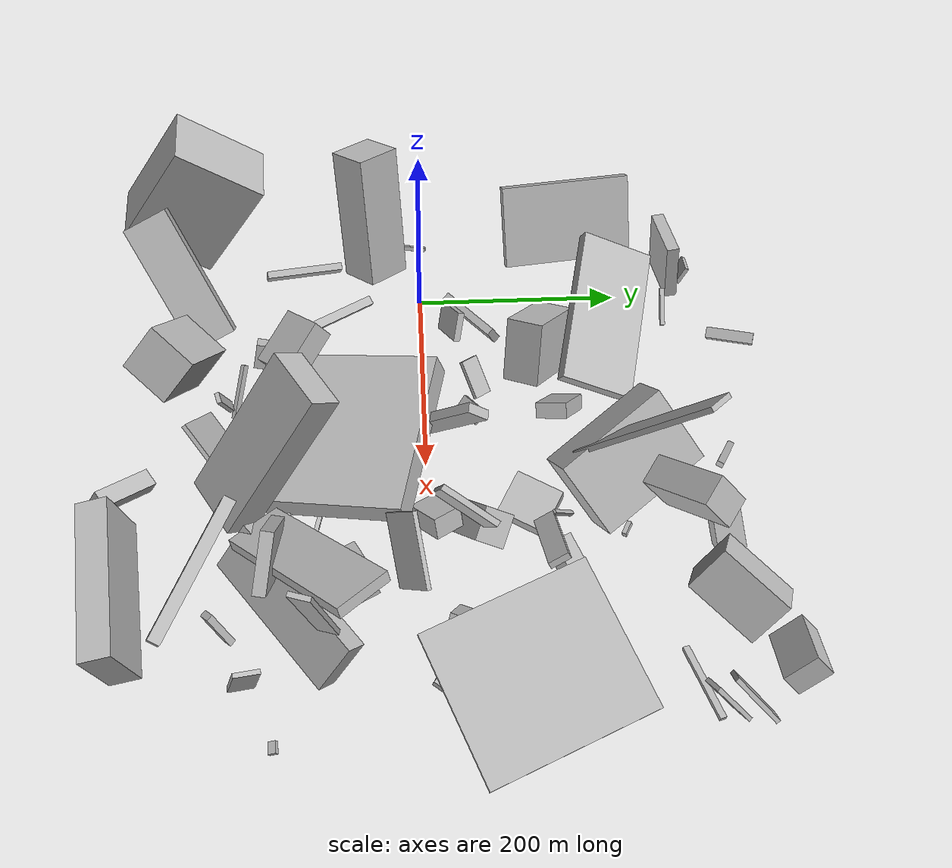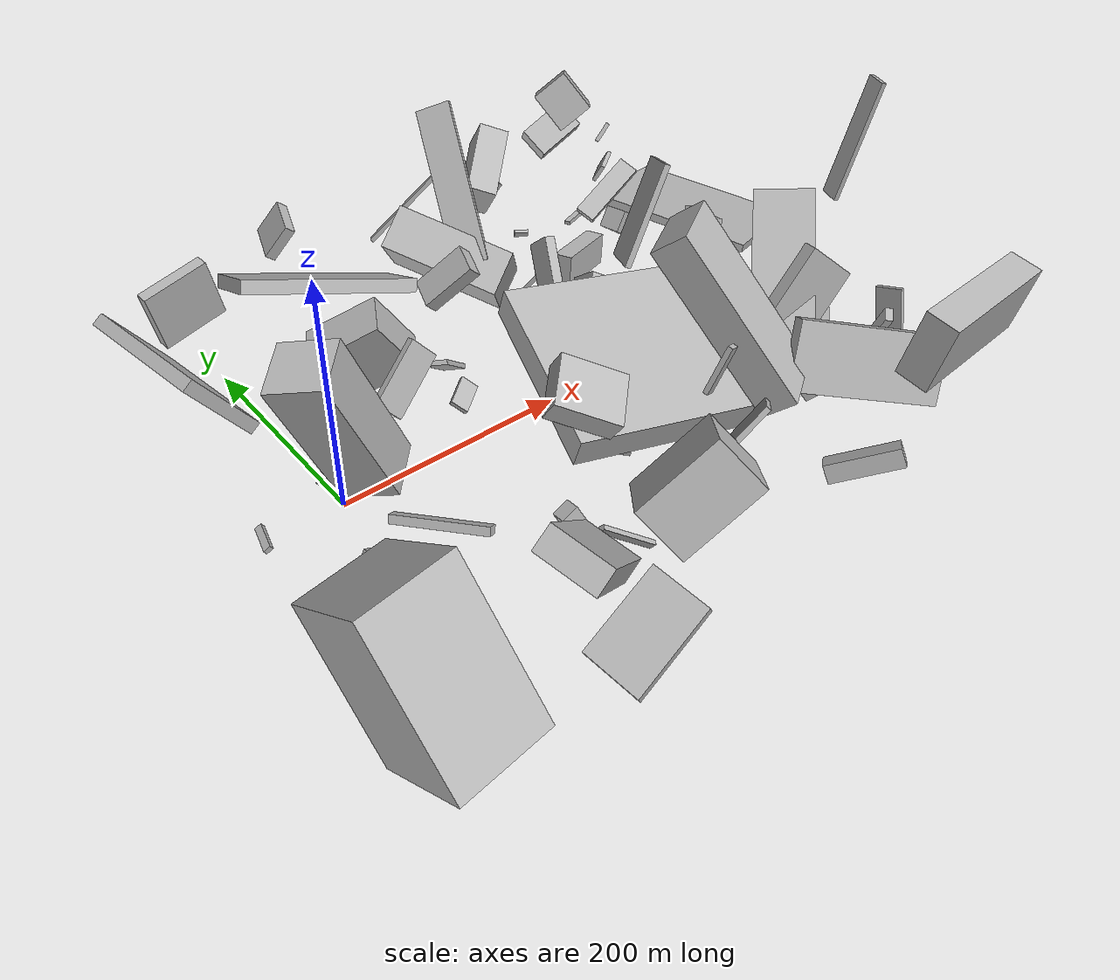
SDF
<sdf version="1.6">
 <world name="default">
  <scene>
   <sky><clouds><speed>12</speed></clouds></sky>
   <ambient>0.4 0.4 0.4 1</ambient>
   <background>0.7 0.7 0.7 1</background>
   <shadows>1</shadows>
  </scene>
  <gravity>0 0 -9.8066</gravity>
  <magnetic_field>6e-06 2.3e-05 -4.2e-05</magnetic_field>
  <physics default="0" name="default_physics" type="ode">
   <ode>
    <solver>
     <type>quick</type>
     <iters>10</iters>
     <sor>1.0</sor>
     <use_dynamic_moi_rescaling>0</use_dynamic_moi_rescaling>
    </solver>
    <constraints>
     <cfm>0</cfm>
     <erp>0.2</erp>
     <contact_max_correcting_vel>100</contact_max_correcting_vel>
     <contact_surface_layer>0.001</contact_surface_layer>
    </constraints>
   </ode>
   <max_step_size>0.004</max_step_size>
   <real_time_factor>1</real_time_factor>
   <real_time_update_rate>250</real_time_update_rate>
  </physics>
  <light name="sun" type="directional">
   <pose>0 0 10 0 0 0</pose>
   <diffuse>0.8 0.8 0.8 1</diffuse>
   <specular>0.2 0.2 0.2 1</specular>
   <attenuation>
    <range>1000</range>
    <constant>0.9</constant>
    <linear>0.01</linear>
    <quadratic>0.001</quadratic>
   </attenuation>
   <direction>-0.5 0.1 -0.9</direction>
  </light>
  <model name="building_1">
   <static>0</static>
   <pose>330.6401846790503 -68.97662135859976 60.86169399213077 1.2213078323936137 -0.08014618248106077 2.032477348147748</pose>
   <link name="link">
    <gravity>0</gravity>
    <pose>0 0 16.5 0 0 0</pose>
    <collision name="collision"><geometry><box><size>21 35 33</size></box></geometry></collision>
    <visual name="visual">
     <cast_shadows>0</cast_shadows>
     <geometry><box><size>21 35 33</size></box></geometry>
     <material>
      <script>
       <uri>model://HANNAS_wall/materials/scripts</uri>
       <uri>model://HANNAS_wall/materials/textures</uri>
       <name>vrc/HANNAS_wall</name>
      </script>
     </material>
    </visual>
   </link>
  </model>
  <model name="building_2">
   <static>0</static>
   <pose>282.8349208608411 -173.9622478714838 76.86206361769914 0.6489603871517472 -0.03766612138654573 -2.5760224262908373</pose>
   <link name="link">
    <gravity>0</gravity>
    <pose>0 0 75.0 0 0 0</pose>
    <collision name="collision"><geometry><box><size>58 30 150</size></box></geometry></collision>
    <visual name="visual">
     <cast_shadows>0</cast_shadows>
     <geometry><box><size>58 30 150</size></box></geometry>
     <material>
      <script>
       <uri>model://HANNAS_wall/materials/scripts</uri>
       <uri>model://HANNAS_wall/materials/textures</uri>
       <name>vrc/HANNAS_wall</name>
      </script>
     </material>
    </visual>
   </link>
  </model>
  <model name="building_3">
   <static>0</static>
   <pose>81.0626001469484 -271.0712881011194 23.976217825815823 -1.4014535631567995 -0.49056688013281174 0.06762576372795787</pose>
   <link name="link">
    <gravity>0</gravity>
    <pose>0 0 23.5 0 0 0</pose>
    <collision name="collision"><geometry><box><size>72 8 47</size></box></geometry></collision>
    <visual name="visual">
     <cast_shadows>0</cast_shadows>
     <geometry><box><size>72 8 47</size></box></geometry>
     <material>
      <script>
       <uri>model://HANNAS_wall/materials/scripts</uri>
       <uri>model://HANNAS_wall/materials/textures</uri>
       <name>vrc/HANNAS_wall</name>
      </script>
     </material>
    </visual>
   </link>
  </model>
  <model name="building_4">
   <static>0</static>
   <pose>29.560428146347355 -84.63472052270268 25.300607254780317 2.9103385916236424 -1.0516083619123007 0.804737126494148</pose>
   <link name="link">
    <gravity>0</gravity>
    <pose>0 0 4.5 0 0 0</pose>
    <collision name="collision"><geometry><box><size>7 78 9</size></box></geometry></collision>
    <visual name="visual">
     <cast_shadows>0</cast_shadows>
     <geometry><box><size>7 78 9</size></box></geometry>
     <material>
      <script>
       <uri>model://HANNAS_wall/materials/scripts</uri>
       <uri>model://HANNAS_wall/materials/textures</uri>
       <name>vrc/HANNAS_wall</name>
      </script>
     </material>
    </visual>
   </link>
  </model>
  <model name="building_5">
   <static>0</static>
   <pose>302.4379409475547 -127.82473782537309 43.45394677170538 0.3973132847140056 -0.038747848900868145 -2.743695891603612</pose>
   <link name="link">
    <gravity>0</gravity>
    <pose>0 0 13.0 0 0 0</pose>
    <collision name="collision"><geometry><box><size>28 10 26</size></box></geometry></collision>
    <visual name="visual">
     <cast_shadows>0</cast_shadows>
     <geometry><box><size>28 10 26</size></box></geometry>
     <material>
      <script>
       <uri>model://HANNAS_wall/materials/scripts</uri>
       <uri>model://HANNAS_wall/materials/textures</uri>
       <name>vrc/HANNAS_wall</name>
      </script>
     </material>
    </visual>
   </link>
  </model>
  <model name="building_6">
   <static>0</static>
   <pose>405.3965325135795 -52.244218121930174 148.83087706208443 -2.0283880300756354 0.11156013460100783 2.288629116676314</pose>
   <link name="link">
    <gravity>0</gravity>
    <pose>0 0 75.0 0 0 0</pose>
    <collision name="collision"><geometry><box><size>50 10 150</size></box></geometry></collision>
    <visual name="visual">
     <cast_shadows>0</cast_shadows>
     <geometry><box><size>50 10 150</size></box></geometry>
     <material>
      <script>
       <uri>model://HANNAS_wall/materials/scripts</uri>
       <uri>model://HANNAS_wall/materials/textures</uri>
       <name>vrc/HANNAS_wall</name>
      </script>
     </material>
    </visual>
   </link>
  </model>
  <model name="building_7">
   <static>0</static>
   <pose>142.14690146915493 -54.69214779469271 87.1153470832174 1.681701467119326 -0.2719319697998864 1.3007881666704522</pose>
   <link name="link">
    <gravity>0</gravity>
    <pose>0 0 75.0 0 0 0</pose>
    <collision name="collision"><geometry><box><size>150 25 150</size></box></geometry></collision>
    <visual name="visual">
     <cast_shadows>0</cast_shadows>
     <geometry><box><size>150 25 150</size></box></geometry>
     <material>
      <script>
       <uri>model://HANNAS_wall/materials/scripts</uri>
       <uri>model://HANNAS_wall/materials/textures</uri>
       <name>vrc/HANNAS_wall</name>
      </script>
     </material>
    </visual>
   </link>
  </model>
  <model name="building_8">
   <static>0</static>
   <pose>-58.447030958329634 150.95219106172127 56.99921763043278 0.0391547972551499 -0.9728520772338762 -3.039114634813768</pose>
   <link name="link">
    <gravity>0</gravity>
    <pose>0 0 5.5 0 0 0</pose>
    <collision name="collision"><geometry><box><size>81 130 11</size></box></geometry></collision>
    <visual name="visual">
     <cast_shadows>0</cast_shadows>
     <geometry><box><size>81 130 11</size></box></geometry>
     <material>
      <script>
       <uri>model://HANNAS_wall/materials/scripts</uri>
       <uri>model://HANNAS_wall/materials/textures</uri>
       <name>vrc/HANNAS_wall</name>
      </script>
     </material>
    </visual>
   </link>
  </model>
  <model name="building_9">
   <static>0</static>
   <pose>408.3747287221505 150.64762045314941 74.44168577936496 -1.9520521013392222 1.3195483976905957 -3.121755598922052</pose>
   <link name="link">
    <gravity>0</gravity>
    <pose>0 0 75.0 0 0 0</pose>
    <collision name="collision"><geometry><box><size>7 132 150</size></box></geometry></collision>
    <visual name="visual">
     <cast_shadows>0</cast_shadows>
     <geometry><box><size>7 132 150</size></box></geometry>
     <material>
      <script>
       <uri>model://HANNAS_wall/materials/scripts</uri>
       <uri>model://HANNAS_wall/materials/textures</uri>
       <name>vrc/HANNAS_wall</name>
      </script>
     </material>
    </visual>
   </link>
  </model>
  <model name="building_10">
   <static>0</static>
   <pose>248.37747568204836 179.24750787675453 118.25532349445177 -2.1351522336531668 -0.8179957873193487 1.2557586887312602</pose>
   <link name="link">
    <gravity>0</gravity>
    <pose>0 0 16.5 0 0 0</pose>
    <collision name="collision"><geometry><box><size>150 5 33</size></box></geometry></collision>
    <visual name="visual">
     <cast_shadows>0</cast_shadows>
     <geometry><box><size>150 5 33</size></box></geometry>
     <material>
      <script>
       <uri>model://HANNAS_wall/materials/scripts</uri>
       <uri>model://HANNAS_wall/materials/textures</uri>
       <name>vrc/HANNAS_wall</name>
      </script>
     </material>
    </visual>
   </link>
  </model>
  <model name="building_11">
   <static>0</static>
   <pose>432.55162261226144 -78.43100745442042 147.87691315640765 0.23847763649679896 -0.050048538803914654 1.2616032643227915</pose>
   <link name="link">
    <gravity>0</gravity>
    <pose>0 0 51.5 0 0 0</pose>
    <collision name="collision"><geometry><box><size>17 4 103</size></box></geometry></collision>
    <visual name="visual">
     <cast_shadows>0</cast_shadows>
     <geometry><box><size>17 4 103</size></box></geometry>
     <material>
      <script>
       <uri>model://HANNAS_wall/materials/scripts</uri>
       <uri>model://HANNAS_wall/materials/textures</uri>
       <name>vrc/HANNAS_wall</name>
      </script>
     </material>
    </visual>
   </link>
  </model>
  <model name="building_12">
   <static>0</static>
   <pose>230.1529030639271 -46.025586081519954 37.93980263396286 -1.994287407223854 -0.48952664781386784 2.3710649823992407</pose>
   <link name="link">
    <gravity>0</gravity>
    <pose>0 0 10.5 0 0 0</pose>
    <collision name="collision"><geometry><box><size>64 43 21</size></box></geometry></collision>
    <visual name="visual">
     <cast_shadows>0</cast_shadows>
     <geometry><box><size>64 43 21</size></box></geometry>
     <material>
      <script>
       <uri>model://HANNAS_wall/materials/scripts</uri>
       <uri>model://HANNAS_wall/materials/textures</uri>
       <name>vrc/HANNAS_wall</name>
      </script>
     </material>
    </visual>
   </link>
  </model>
  <model name="building_13">
   <static>0</static>
   <pose>385.90744219837086 -235.2257946685935 135.9314429349879 1.7801257256984708 0.07278540565181203 0.12382590066298964</pose>
   <link name="link">
    <gravity>0</gravity>
    <pose>0 0 13.0 0 0 0</pose>
    <collision name="collision"><geometry><box><size>129 56 26</size></box></geometry></collision>
    <visual name="visual">
     <cast_shadows>0</cast_shadows>
     <geometry><box><size>129 56 26</size></box></geometry>
     <material>
      <script>
       <uri>model://HANNAS_wall/materials/scripts</uri>
       <uri>model://HANNAS_wall/materials/textures</uri>
       <name>vrc/HANNAS_wall</name>
      </script>
     </material>
    </visual>
   </link>
  </model>
  <model name="building_14">
   <static>0</static>
   <pose>422.5401363094571 -74.7524374659871 54.62739657536272 1.4342582731600704 -0.6716954978374917 -0.8080129248827955</pose>
   <link name="link">
    <gravity>0</gravity>
    <pose>0 0 69.5 0 0 0</pose>
    <collision name="collision"><geometry><box><size>20 49 139</size></box></geometry></collision>
    <visual name="visual">
     <cast_shadows>0</cast_shadows>
     <geometry><box><size>20 49 139</size></box></geometry>
     <material>
      <script>
       <uri>model://HANNAS_wall/materials/scripts</uri>
       <uri>model://HANNAS_wall/materials/textures</uri>
       <name>vrc/HANNAS_wall</name>
      </script>
     </material>
    </visual>
   </link>
  </model>
  <model name="building_15">
   <static>0</static>
   <pose>-64.17913310305121 7.82193050831936 10.702641038148808 1.6302253794734933 -0.571618268024346 -0.2465404213282991</pose>
   <link name="link">
    <gravity>0</gravity>
    <pose>0 0 12.0 0 0 0</pose>
    <collision name="collision"><geometry><box><size>6 4 24</size></box></geometry></collision>
    <visual name="visual">
     <cast_shadows>0</cast_shadows>
     <geometry><box><size>6 4 24</size></box></geometry>
     <material>
      <script>
       <uri>model://HANNAS_wall/materials/scripts</uri>
       <uri>model://HANNAS_wall/materials/textures</uri>
       <name>vrc/HANNAS_wall</name>
      </script>
     </material>
    </visual>
   </link>
  </model>
  <model name="building_16">
   <static>0</static>
   <pose>195.66601463884356 224.0556857100533 59.76741704508189 -1.9683219695219103 0.7404936658520385 -2.8255362053889006</pose>
   <link name="link">
    <gravity>0</gravity>
    <pose>0 0 55.5 0 0 0</pose>
    <collision name="collision"><geometry><box><size>41 78 111</size></box></geometry></collision>
    <visual name="visual">
     <cast_shadows>0</cast_shadows>
     <geometry><box><size>41 78 111</size></box></geometry>
     <material>
      <script>
       <uri>model://HANNAS_wall/materials/scripts</uri>
       <uri>model://HANNAS_wall/materials/textures</uri>
       <name>vrc/HANNAS_wall</name>
      </script>
     </material>
    </visual>
   </link>
  </model>
  <model name="building_17">
   <static>0</static>
   <pose>317.54271466841294 29.304713802363434 127.3253977196939 1.9770986526470509 0.3261689904944823 1.0414655041118221</pose>
   <link name="link">
    <gravity>0</gravity>
    <pose>0 0 2.5 0 0 0</pose>
    <collision name="collision"><geometry><box><size>52 91 5</size></box></geometry></collision>
    <visual name="visual">
     <cast_shadows>0</cast_shadows>
     <geometry><box><size>52 91 5</size></box></geometry>
     <material>
      <script>
       <uri>model://HANNAS_wall/materials/scripts</uri>
       <uri>model://HANNAS_wall/materials/textures</uri>
       <name>vrc/HANNAS_wall</name>
      </script>
     </material>
    </visual>
   </link>
  </model>
  <model name="building_18">
   <static>0</static>
   <pose>408.12778263817796 125.4393955690349 36.84739537569955 -0.06135292898960341 -0.9316473570658355 0.22601309537820197</pose>
   <link name="link">
    <gravity>0</gravity>
    <pose>0 0 22.5 0 0 0</pose>
    <collision name="collision"><geometry><box><size>27 21 45</size></box></geometry></collision>
    <visual name="visual">
     <cast_shadows>0</cast_shadows>
     <geometry><box><size>27 21 45</size></box></geometry>
     <material>
      <script>
       <uri>model://HANNAS_wall/materials/scripts</uri>
       <uri>model://HANNAS_wall/materials/textures</uri>
       <name>vrc/HANNAS_wall</name>
      </script>
     </material>
    </visual>
   </link>
  </model>
  <model name="building_19">
   <static>0</static>
   <pose>191.91129526506566 -184.11686997868208 56.770534162860486 0.610299561794468 -0.5529922216051526 1.9343248101592736</pose>
   <link name="link">
    <gravity>0</gravity>
    <pose>0 0 31.5 0 0 0</pose>
    <collision name="collision"><geometry><box><size>4 40 63</size></box></geometry></collision>
    <visual name="visual">
     <cast_shadows>0</cast_shadows>
     <geometry><box><size>4 40 63</size></box></geometry>
     <material>
      <script>
       <uri>model://HANNAS_wall/materials/scripts</uri>
       <uri>model://HANNAS_wall/materials/textures</uri>
       <name>vrc/HANNAS_wall</name>
      </script>
     </material>
    </visual>
   </link>
  </model>
  <model name="building_20">
   <static>0</static>
   <pose>54.4808876550011 -246.4951044286119 92.04953470090996 1.1338250265250234 -0.7492473303475533 -2.4924719493710334</pose>
   <link name="link">
    <gravity>0</gravity>
    <pose>0 0 22.0 0 0 0</pose>
    <collision name="collision"><geometry><box><size>129 19 44</size></box></geometry></collision>
    <visual name="visual">
     <cast_shadows>0</cast_shadows>
     <geometry><box><size>129 19 44</size></box></geometry>
     <material>
      <script>
       <uri>model://HANNAS_wall/materials/scripts</uri>
       <uri>model://HANNAS_wall/materials/textures</uri>
       <name>vrc/HANNAS_wall</name>
      </script>
     </material>
    </visual>
   </link>
  </model>
  <model name="building_21">
   <static>0</static>
   <pose>71.84997680711791 114.12865618244635 65.59036325085525 -2.873081439384422 -0.506220165360618 -0.6332247593190015</pose>
   <link name="link">
    <gravity>0</gravity>
    <pose>0 0 30.5 0 0 0</pose>
    <collision name="collision"><geometry><box><size>68 36 61</size></box></geometry></collision>
    <visual name="visual">
     <cast_shadows>0</cast_shadows>
     <geometry><box><size>68 36 61</size></box></geometry>
     <material>
      <script>
       <uri>model://HANNAS_wall/materials/scripts</uri>
       <uri>model://HANNAS_wall/materials/textures</uri>
       <name>vrc/HANNAS_wall</name>
      </script>
     </material>
    </visual>
   </link>
  </model>
  <model name="building_22">
   <static>0</static>
   <pose>369.82768472162405 -134.07848322744357 96.02374563828421 0.8529754271611159 -0.08573644927111766 -1.7245740961982303</pose>
   <link name="link">
    <gravity>0</gravity>
    <pose>0 0 26.0 0 0 0</pose>
    <collision name="collision"><geometry><box><size>11 60 52</size></box></geometry></collision>
    <visual name="visual">
     <cast_shadows>0</cast_shadows>
     <geometry><box><size>11 60 52</size></box></geometry>
     <material>
      <script>
       <uri>model://HANNAS_wall/materials/scripts</uri>
       <uri>model://HANNAS_wall/materials/textures</uri>
       <name>vrc/HANNAS_wall</name>
      </script>
     </material>
    </visual>
   </link>
  </model>
  <model name="building_23">
   <static>0</static>
   <pose>-40.40206204368819 -222.04598824237792 95.1763555979381 -1.7337382331133473 -0.9446447212355279 1.771595107047687</pose>
   <link name="link">
    <gravity>0</gravity>
    <pose>0 0 33.0 0 0 0</pose>
    <collision name="collision"><geometry><box><size>113 95 66</size></box></geometry></collision>
    <visual name="visual">
     <cast_shadows>0</cast_shadows>
     <geometry><box><size>113 95 66</size></box></geometry>
     <material>
      <script>
       <uri>model://HANNAS_wall/materials/scripts</uri>
       <uri>model://HANNAS_wall/materials/textures</uri>
       <name>vrc/HANNAS_wall</name>
      </script>
     </material>
    </visual>
   </link>
  </model>
  <model name="building_24">
   <static>0</static>
   <pose>84.0707131717567 172.2127010111655 70.55393134689798 0.4302186510949541 -0.26735108125472234 2.9202620926677176</pose>
   <link name="link">
    <gravity>0</gravity>
    <pose>0 0 6.0 0 0 0</pose>
    <collision name="collision"><geometry><box><size>150 72 12</size></box></geometry></collision>
    <visual name="visual">
     <cast_shadows>0</cast_shadows>
     <geometry><box><size>150 72 12</size></box></geometry>
     <material>
      <script>
       <uri>model://HANNAS_wall/materials/scripts</uri>
       <uri>model://HANNAS_wall/materials/textures</uri>
       <name>vrc/HANNAS_wall</name>
      </script>
     </material>
    </visual>
   </link>
  </model>
  <model name="building_25">
   <static>0</static>
   <pose>186.16093342330208 134.68092199862897 71.62440826883 1.9771797382475995 -0.7098621267334079 -0.54935483868228</pose>
   <link name="link">
    <gravity>0</gravity>
    <pose>0 0 14.0 0 0 0</pose>
    <collision name="collision"><geometry><box><size>52 14 28</size></box></geometry></collision>
    <visual name="visual">
     <cast_shadows>0</cast_shadows>
     <geometry><box><size>52 14 28</size></box></geometry>
     <material>
      <script>
       <uri>model://HANNAS_wall/materials/scripts</uri>
       <uri>model://HANNAS_wall/materials/textures</uri>
       <name>vrc/HANNAS_wall</name>
      </script>
     </material>
    </visual>
   </link>
  </model>
  <model name="building_26">
   <static>0</static>
   <pose>266.00604943015634 45.99138959268534 39.06310281333756 2.225217003737932 0.645051071324224 1.5874641011809876</pose>
   <link name="link">
    <gravity>0</gravity>
    <pose>0 0 15.5 0 0 0</pose>
    <collision name="collision"><geometry><box><size>31 66 31</size></box></geometry></collision>
    <visual name="visual">
     <cast_shadows>0</cast_shadows>
     <geometry><box><size>31 66 31</size></box></geometry>
     <material>
      <script>
       <uri>model://HANNAS_wall/materials/scripts</uri>
       <uri>model://HANNAS_wall/materials/textures</uri>
       <name>vrc/HANNAS_wall</name>
      </script>
     </material>
    </visual>
   </link>
  </model>
  <model name="building_27">
   <static>0</static>
   <pose>314.4219082428761 94.9811867781119 94.87484212050306 -1.0285176209080606 0.4165863677232989 -1.2483580132397394</pose>
   <link name="link">
    <gravity>0</gravity>
    <pose>0 0 31.5 0 0 0</pose>
    <collision name="collision"><geometry><box><size>18 6 63</size></box></geometry></collision>
    <visual name="visual">
     <cast_shadows>0</cast_shadows>
     <geometry><box><size>18 6 63</size></box></geometry>
     <material>
      <script>
       <uri>model://HANNAS_wall/materials/scripts</uri>
       <uri>model://HANNAS_wall/materials/textures</uri>
       <name>vrc/HANNAS_wall</name>
      </script>
     </material>
    </visual>
   </link>
  </model>
  <model name="building_28">
   <static>0</static>
   <pose>402.3069825286139 -225.41045590690118 67.11528669203027 1.2876486599841648 -0.3844610396833008 -1.9498265097950316</pose>
   <link name="link">
    <gravity>0</gravity>
    <pose>0 0 64.0 0 0 0</pose>
    <collision name="collision"><geometry><box><size>11 55 128</size></box></geometry></collision>
    <visual name="visual">
     <cast_shadows>0</cast_shadows>
     <geometry><box><size>11 55 128</size></box></geometry>
     <material>
      <script>
       <uri>model://HANNAS_wall/materials/scripts</uri>
       <uri>model://HANNAS_wall/materials/textures</uri>
       <name>vrc/HANNAS_wall</name>
      </script>
     </material>
    </visual>
   </link>
  </model>
  <model name="building_29">
   <static>0</static>
   <pose>338.2988408866647 -29.685444533514733 91.9236764801575 0.39388170075488926 -0.5981484504317415 -2.954040614647258</pose>
   <link name="link">
    <gravity>0</gravity>
    <pose>0 0 23.0 0 0 0</pose>
    <collision name="collision"><geometry><box><size>63 4 46</size></box></geometry></collision>
    <visual name="visual">
     <cast_shadows>0</cast_shadows>
     <geometry><box><size>63 4 46</size></box></geometry>
     <material>
      <script>
       <uri>model://HANNAS_wall/materials/scripts</uri>
       <uri>model://HANNAS_wall/materials/textures</uri>
       <name>vrc/HANNAS_wall</name>
      </script>
     </material>
    </visual>
   </link>
  </model>
  <model name="building_30">
   <static>0</static>
   <pose>202.23578584345285 3.960033393901581 65.07176276607125 0.39581752820591243 -0.7699643613428208 1.1379736984984061</pose>
   <link name="link">
    <gravity>0</gravity>
    <pose>0 0 11.5 0 0 0</pose>
    <collision name="collision"><geometry><box><size>150 9 23</size></box></geometry></collision>
    <visual name="visual">
     <cast_shadows>0</cast_shadows>
     <geometry><box><size>150 9 23</size></box></geometry>
     <material>
      <script>
       <uri>model://HANNAS_wall/materials/scripts</uri>
       <uri>model://HANNAS_wall/materials/textures</uri>
       <name>vrc/HANNAS_wall</name>
      </script>
     </material>
    </visual>
   </link>
  </model>
  <model name="building_31">
   <static>0</static>
   <pose>425.9595746792376 228.02483306662106 7.8056103222981825 1.0448420111684489 1.4814197226038581 -0.23457938093319292</pose>
   <link name="link">
    <gravity>0</gravity>
    <pose>0 0 3.0 0 0 0</pose>
    <collision name="collision"><geometry><box><size>4 69 6</size></box></geometry></collision>
    <visual name="visual">
     <cast_shadows>0</cast_shadows>
     <geometry><box><size>4 69 6</size></box></geometry>
     <material>
      <script>
       <uri>model://HANNAS_wall/materials/scripts</uri>
       <uri>model://HANNAS_wall/materials/textures</uri>
       <name>vrc/HANNAS_wall</name>
      </script>
     </material>
    </visual>
   </link>
  </model>
  <model name="building_32">
   <static>0</static>
   <pose>436.6944022931386 -154.66166951240203 53.60319907789065 -0.23209702559404732 0.12954461652526936 0.2128783217658341</pose>
   <link name="link">
    <gravity>0</gravity>
    <pose>0 0 18.0 0 0 0</pose>
    <collision name="collision"><geometry><box><size>4 22 36</size></box></geometry></collision>
    <visual name="visual">
     <cast_shadows>0</cast_shadows>
     <geometry><box><size>4 22 36</size></box></geometry>
     <material>
      <script>
       <uri>model://HANNAS_wall/materials/scripts</uri>
       <uri>model://HANNAS_wall/materials/textures</uri>
       <name>vrc/HANNAS_wall</name>
      </script>
     </material>
    </visual>
   </link>
  </model>
  <model name="building_33">
   <static>0</static>
   <pose>439.3694277983781 97.17247175421133 21.29281448507916 1.693454072367705 1.3854446574377697 0.7324534815993076</pose>
   <link name="link">
    <gravity>0</gravity>
    <pose>0 0 2.0 0 0 0</pose>
    <collision name="collision"><geometry><box><size>16 35 4</size></box></geometry></collision>
    <visual name="visual">
     <cast_shadows>0</cast_shadows>
     <geometry><box><size>16 35 4</size></box></geometry>
     <material>
      <script>
       <uri>model://HANNAS_wall/materials/scripts</uri>
       <uri>model://HANNAS_wall/materials/textures</uri>
       <name>vrc/HANNAS_wall</name>
      </script>
     </material>
    </visual>
   </link>
  </model>
  <model name="building_34">
   <static>0</static>
   <pose>-35.63419724915097 243.914549280806 50.721494831918356 -1.3709451403892277 0.056020257392208166 -1.4665376477394885</pose>
   <link name="link">
    <gravity>0</gravity>
    <pose>0 0 30.0 0 0 0</pose>
    <collision name="collision"><geometry><box><size>12 57 60</size></box></geometry></collision>
    <visual name="visual">
     <cast_shadows>0</cast_shadows>
     <geometry><box><size>12 57 60</size></box></geometry>
     <material>
      <script>
       <uri>model://HANNAS_wall/materials/scripts</uri>
       <uri>model://HANNAS_wall/materials/textures</uri>
       <name>vrc/HANNAS_wall</name>
      </script>
     </material>
    </visual>
   </link>
  </model>
  <model name="building_35">
   <static>0</static>
   <pose>153.5420043060953 -205.9175681157795 89.82806213531967 1.068345917626618 0.7476490950140872 -1.0397911690815789</pose>
   <link name="link">
    <gravity>0</gravity>
    <pose>0 0 24.5 0 0 0</pose>
    <collision name="collision"><geometry><box><size>46 71 49</size></box></geometry></collision>
    <visual name="visual">
     <cast_shadows>0</cast_shadows>
     <geometry><box><size>46 71 49</size></box></geometry>
     <material>
      <script>
       <uri>model://HANNAS_wall/materials/scripts</uri>
       <uri>model://HANNAS_wall/materials/textures</uri>
       <name>vrc/HANNAS_wall</name>
      </script>
     </material>
    </visual>
   </link>
  </model>
  <model name="building_36">
   <static>0</static>
   <pose>-1.4391422154944102 -62.6795343260395 123.0902629292608 2.1644140496758713 -1.190778318726387 -2.9969778093517037</pose>
   <link name="link">
    <gravity>0</gravity>
    <pose>0 0 22.0 0 0 0</pose>
    <collision name="collision"><geometry><box><size>126 40 44</size></box></geometry></collision>
    <visual name="visual">
     <cast_shadows>0</cast_shadows>
     <geometry><box><size>126 40 44</size></box></geometry>
     <material>
      <script>
       <uri>model://HANNAS_wall/materials/scripts</uri>
       <uri>model://HANNAS_wall/materials/textures</uri>
       <name>vrc/HANNAS_wall</name>
      </script>
     </material>
    </visual>
   </link>
  </model>
  <model name="building_37">
   <static>0</static>
   <pose>400.8201152611603 -172.71655469020607 83.04782648030402 -1.3281397401286115 1.0301349979397791 1.0326517480321424</pose>
   <link name="link">
    <gravity>0</gravity>
    <pose>0 0 3.0 0 0 0</pose>
    <collision name="collision"><geometry><box><size>34 11 6</size></box></geometry></collision>
    <visual name="visual">
     <cast_shadows>0</cast_shadows>
     <geometry><box><size>34 11 6</size></box></geometry>
     <material>
      <script>
       <uri>model://HANNAS_wall/materials/scripts</uri>
       <uri>model://HANNAS_wall/materials/textures</uri>
       <name>vrc/HANNAS_wall</name>
      </script>
     </material>
    </visual>
   </link>
  </model>
  <model name="building_38">
   <static>0</static>
   <pose>476.78827076233034 -129.06936855270618 41.252977595518956 -1.6743034519944677 0.43478911449823365 -1.560445418849254</pose>
   <link name="link">
    <gravity>0</gravity>
    <pose>0 0 5.0 0 0 0</pose>
    <collision name="collision"><geometry><box><size>7 4 10</size></box></geometry></collision>
    <visual name="visual">
     <cast_shadows>0</cast_shadows>
     <geometry><box><size>7 4 10</size></box></geometry>
     <material>
      <script>
       <uri>model://HANNAS_wall/materials/scripts</uri>
       <uri>model://HANNAS_wall/materials/textures</uri>
       <name>vrc/HANNAS_wall</name>
      </script>
     </material>
    </visual>
   </link>
  </model>
  <model name="building_39">
   <static>0</static>
   <pose>141.25701346220922 55.75100671264153 29.891299473068344 -0.37368810309665246 -0.814821838889803 0.9667544935278126</pose>
   <link name="link">
    <gravity>0</gravity>
    <pose>0 0 18.5 0 0 0</pose>
    <collision name="collision"><geometry><box><size>4 19 37</size></box></geometry></collision>
    <visual name="visual">
     <cast_shadows>0</cast_shadows>
     <geometry><box><size>4 19 37</size></box></geometry>
     <material>
      <script>
       <uri>model://HANNAS_wall/materials/scripts</uri>
       <uri>model://HANNAS_wall/materials/textures</uri>
       <name>vrc/HANNAS_wall</name>
      </script>
     </material>
    </visual>
   </link>
  </model>
  <model name="building_40">
   <static>0</static>
   <pose>389.2687861211168 240.0075418019507 123.29631603286592 0.5085015060166457 -0.8252580552223994 2.0560766728980386</pose>
   <link name="link">
    <gravity>0</gravity>
    <pose>0 0 18.0 0 0 0</pose>
    <collision name="collision"><geometry><box><size>41 64 36</size></box></geometry></collision>
    <visual name="visual">
     <cast_shadows>0</cast_shadows>
     <geometry><box><size>41 64 36</size></box></geometry>
     <material>
      <script>
       <uri>model://HANNAS_wall/materials/scripts</uri>
       <uri>model://HANNAS_wall/materials/textures</uri>
       <name>vrc/HANNAS_wall</name>
      </script>
     </material>
    </visual>
   </link>
  </model>
  <model name="building_41">
   <static>0</static>
   <pose>-18.150181304143327 -117.15971328570473 26.943862195541872 1.0237810638447757 -0.07612565695240398 -1.3692458403009133</pose>
   <link name="link">
    <gravity>0</gravity>
    <pose>0 0 3.5 0 0 0</pose>
    <collision name="collision"><geometry><box><size>76 17 7</size></box></geometry></collision>
    <visual name="visual">
     <cast_shadows>0</cast_shadows>
     <geometry><box><size>76 17 7</size></box></geometry>
     <material>
      <script>
       <uri>model://HANNAS_wall/materials/scripts</uri>
       <uri>model://HANNAS_wall/materials/textures</uri>
       <name>vrc/HANNAS_wall</name>
      </script>
     </material>
    </visual>
   </link>
  </model>
  <model name="building_42">
   <static>0</static>
   <pose>185.57779188310644 -113.41889072048748 34.839245541231776 -0.8291659064149229 1.4310785256851422 1.5272256168508418</pose>
   <link name="link">
    <gravity>0</gravity>
    <pose>0 0 9.0 0 0 0</pose>
    <collision name="collision"><geometry><box><size>4 20 18</size></box></geometry></collision>
    <visual name="visual">
     <cast_shadows>0</cast_shadows>
     <geometry><box><size>4 20 18</size></box></geometry>
     <material>
      <script>
       <uri>model://HANNAS_wall/materials/scripts</uri>
       <uri>model://HANNAS_wall/materials/textures</uri>
       <name>vrc/HANNAS_wall</name>
      </script>
     </material>
    </visual>
   </link>
  </model>
  <model name="building_43">
   <static>0</static>
   <pose>124.38572556188971 -174.4612761490056 22.656362832057077 0.6985215463719593 -0.3260314758784843 1.0368670832969553</pose>
   <link name="link">
    <gravity>0</gravity>
    <pose>0 0 3.0 0 0 0</pose>
    <collision name="collision"><geometry><box><size>4 52 6</size></box></geometry></collision>
    <visual name="visual">
     <cast_shadows>0</cast_shadows>
     <geometry><box><size>4 52 6</size></box></geometry>
     <material>
      <script>
       <uri>model://HANNAS_wall/materials/scripts</uri>
       <uri>model://HANNAS_wall/materials/textures</uri>
       <name>vrc/HANNAS_wall</name>
      </script>
     </material>
    </visual>
   </link>
  </model>
  <model name="building_44">
   <static>0</static>
   <pose>291.8577748443008 209.04274001079992 113.76690836291931 2.5586925614608056 -0.3456477919656768 2.5103642614404893</pose>
   <link name="link">
    <gravity>0</gravity>
    <pose>0 0 20.5 0 0 0</pose>
    <collision name="collision"><geometry><box><size>28 70 41</size></box></geometry></collision>
    <visual name="visual">
     <cast_shadows>0</cast_shadows>
     <geometry><box><size>28 70 41</size></box></geometry>
     <material>
      <script>
       <uri>model://HANNAS_wall/materials/scripts</uri>
       <uri>model://HANNAS_wall/materials/textures</uri>
       <name>vrc/HANNAS_wall</name>
      </script>
     </material>
    </visual>
   </link>
  </model>
  <model name="building_45">
   <static>0</static>
   <pose>248.22713831338442 -90.61022922540846 34.43811956062135 0.16875337025597814 0.05428881938601915 1.328147867002366</pose>
   <link name="link">
    <gravity>0</gravity>
    <pose>0 0 2.0 0 0 0</pose>
    <collision name="collision"><geometry><box><size>4 150 4</size></box></geometry></collision>
    <visual name="visual">
     <cast_shadows>0</cast_shadows>
     <geometry><box><size>4 150 4</size></box></geometry>
     <material>
      <script>
       <uri>model://HANNAS_wall/materials/scripts</uri>
       <uri>model://HANNAS_wall/materials/textures</uri>
       <name>vrc/HANNAS_wall</name>
      </script>
     </material>
    </visual>
   </link>
  </model>
  <model name="building_46">
   <static>0</static>
   <pose>247.29537883681536 -243.87564593489247 64.69816126895341 -1.1539063752787304 -0.3006495043015286 -2.5050056981922113</pose>
   <link name="link">
    <gravity>0</gravity>
    <pose>0 0 27.0 0 0 0</pose>
    <collision name="collision"><geometry><box><size>16 14 54</size></box></geometry></collision>
    <visual name="visual">
     <cast_shadows>0</cast_shadows>
     <geometry><box><size>16 14 54</size></box></geometry>
     <material>
      <script>
       <uri>model://HANNAS_wall/materials/scripts</uri>
       <uri>model://HANNAS_wall/materials/textures</uri>
       <name>vrc/HANNAS_wall</name>
      </script>
     </material>
    </visual>
   </link>
  </model>
  <model name="building_47">
   <static>0</static>
   <pose>100.1024743145976 271.048451167242 63.79010772256883 1.3834952661544457 0.902462351897849 2.676776148173654</pose>
   <link name="link">
    <gravity>0</gravity>
    <pose>0 0 21.5 0 0 0</pose>
    <collision name="collision"><geometry><box><size>35 10 43</size></box></geometry></collision>
    <visual name="visual">
     <cast_shadows>0</cast_shadows>
     <geometry><box><size>35 10 43</size></box></geometry>
     <material>
      <script>
       <uri>model://HANNAS_wall/materials/scripts</uri>
       <uri>model://HANNAS_wall/materials/textures</uri>
       <name>vrc/HANNAS_wall</name>
      </script>
     </material>
    </visual>
   </link>
  </model>
  <model name="building_48">
   <static>0</static>
   <pose>29.819717703910513 47.905019871530115 16.75979148399957 3.0615382962384454 -0.44943769829383595 2.2799489138244997</pose>
   <link name="link">
    <gravity>0</gravity>
    <pose>0 0 10.5 0 0 0</pose>
    <collision name="collision"><geometry><box><size>8 68 21</size></box></geometry></collision>
    <visual name="visual">
     <cast_shadows>0</cast_shadows>
     <geometry><box><size>8 68 21</size></box></geometry>
     <material>
      <script>
       <uri>model://HANNAS_wall/materials/scripts</uri>
       <uri>model://HANNAS_wall/materials/textures</uri>
       <name>vrc/HANNAS_wall</name>
      </script>
     </material>
    </visual>
   </link>
  </model>
  <model name="building_49">
   <static>0</static>
   <pose>235.16714587790668 104.1268889566399 17.49509376423194 -2.9409524159096354 1.340555165135518 2.8129487807313915</pose>
   <link name="link">
    <gravity>0</gravity>
    <pose>0 0 21.0 0 0 0</pose>
    <collision name="collision"><geometry><box><size>18 46 42</size></box></geometry></collision>
    <visual name="visual">
     <cast_shadows>0</cast_shadows>
     <geometry><box><size>18 46 42</size></box></geometry>
     <material>
      <script>
       <uri>model://HANNAS_wall/materials/scripts</uri>
       <uri>model://HANNAS_wall/materials/textures</uri>
       <name>vrc/HANNAS_wall</name>
      </script>
     </material>
    </visual>
   </link>
  </model>
  <model name="building_50">
   <static>0</static>
   <pose>331.19068353448 134.45262335612824 27.091980832872668 1.5614893054186147 0.1426403484193207 0.40586146186601946</pose>
   <link name="link">
    <gravity>0</gravity>
    <pose>0 0 8.5 0 0 0</pose>
    <collision name="collision"><geometry><box><size>68 30 17</size></box></geometry></collision>
    <visual name="visual">
     <cast_shadows>0</cast_shadows>
     <geometry><box><size>68 30 17</size></box></geometry>
     <material>
      <script>
       <uri>model://HANNAS_wall/materials/scripts</uri>
       <uri>model://HANNAS_wall/materials/textures</uri>
       <name>vrc/HANNAS_wall</name>
      </script>
     </material>
    </visual>
   </link>
  </model>
  <model name="building_51">
   <static>0</static>
   <pose>380.3090245323088 45.48382191356112 42.468068584838576 -0.7547213362756006 0.07713289561935119 -1.9969831101837034</pose>
   <link name="link">
    <gravity>0</gravity>
    <pose>0 0 14.5 0 0 0</pose>
    <collision name="collision"><geometry><box><size>51 12 29</size></box></geometry></collision>
    <visual name="visual">
     <cast_shadows>0</cast_shadows>
     <geometry><box><size>51 12 29</size></box></geometry>
     <material>
      <script>
       <uri>model://HANNAS_wall/materials/scripts</uri>
       <uri>model://HANNAS_wall/materials/textures</uri>
       <name>vrc/HANNAS_wall</name>
      </script>
     </material>
    </visual>
   </link>
  </model>
  <model name="building_52">
   <static>0</static>
   <pose>122.92412135078064 -129.7508262406742 99.44828160409685 -0.831018172237842 -0.9920967814046313 -1.4666207701243754</pose>
   <link name="link">
    <gravity>0</gravity>
    <pose>0 0 21.0 0 0 0</pose>
    <collision name="collision"><geometry><box><size>22 52 42</size></box></geometry></collision>
    <visual name="visual">
     <cast_shadows>0</cast_shadows>
     <geometry><box><size>22 52 42</size></box></geometry>
     <material>
      <script>
       <uri>model://HANNAS_wall/materials/scripts</uri>
       <uri>model://HANNAS_wall/materials/textures</uri>
       <name>vrc/HANNAS_wall</name>
      </script>
     </material>
    </visual>
   </link>
  </model>
  <model name="building_53">
   <static>0</static>
   <pose>235.58421473928155 262.36558463086664 64.97755834570354 1.7075964472006575 -0.7873815773125465 2.4642491648371148</pose>
   <link name="link">
    <gravity>0</gravity>
    <pose>0 0 3.0 0 0 0</pose>
    <collision name="collision"><geometry><box><size>4 114 6</size></box></geometry></collision>
    <visual name="visual">
     <cast_shadows>0</cast_shadows>
     <geometry><box><size>4 114 6</size></box></geometry>
     <material>
      <script>
       <uri>model://HANNAS_wall/materials/scripts</uri>
       <uri>model://HANNAS_wall/materials/textures</uri>
       <name>vrc/HANNAS_wall</name>
      </script>
     </material>
    </visual>
   </link>
  </model>
  <model name="building_54">
   <static>0</static>
   <pose>435.4483547886857 277.33020264496486 62.151520112888434 0.6142386543277253 -0.7073257472626283 -2.064429653891473</pose>
   <link name="link">
    <gravity>0</gravity>
    <pose>0 0 16.0 0 0 0</pose>
    <collision name="collision"><geometry><box><size>21 52 32</size></box></geometry></collision>
    <visual name="visual">
     <cast_shadows>0</cast_shadows>
     <geometry><box><size>21 52 32</size></box></geometry>
     <material>
      <script>
       <uri>model://HANNAS_wall/materials/scripts</uri>
       <uri>model://HANNAS_wall/materials/textures</uri>
       <name>vrc/HANNAS_wall</name>
      </script>
     </material>
    </visual>
   </link>
  </model>
  <model name="building_55">
   <static>0</static>
   <pose>271.4861108505226 -3.043012906947522 42.63662008595599 -1.0894056690690783 -0.17128572296548852 -0.9676514566295127</pose>
   <link name="link">
    <gravity>0</gravity>
    <pose>0 0 17.5 0 0 0</pose>
    <collision name="collision"><geometry><box><size>28 20 35</size></box></geometry></collision>
    <visual name="visual">
     <cast_shadows>0</cast_shadows>
     <geometry><box><size>28 20 35</size></box></geometry>
     <material>
      <script>
       <uri>model://HANNAS_wall/materials/scripts</uri>
       <uri>model://HANNAS_wall/materials/textures</uri>
       <name>vrc/HANNAS_wall</name>
      </script>
     </material>
    </visual>
   </link>
  </model>
  <model name="building_56">
   <static>0</static>
   <pose>435.12358541789007 9.452835734444362 24.645865507064862 1.99851443439302 1.2678001191154615 -1.7084727415182994</pose>
   <link name="link">
    <gravity>0</gravity>
    <pose>0 0 25.5 0 0 0</pose>
    <collision name="collision"><geometry><box><size>6 27 51</size></box></geometry></collision>
    <visual name="visual">
     <cast_shadows>0</cast_shadows>
     <geometry><box><size>6 27 51</size></box></geometry>
     <material>
      <script>
       <uri>model://HANNAS_wall/materials/scripts</uri>
       <uri>model://HANNAS_wall/materials/textures</uri>
       <name>vrc/HANNAS_wall</name>
      </script>
     </material>
    </visual>
   </link>
  </model>
  <model name="building_57">
   <static>0</static>
   <pose>467.3036600527183 244.22379393143515 74.12276354597275 1.011942200880031 -0.4590485812671298 -2.285515361358641</pose>
   <link name="link">
    <gravity>0</gravity>
    <pose>0 0 2.0 0 0 0</pose>
    <collision name="collision"><geometry><box><size>46 21 4</size></box></geometry></collision>
    <visual name="visual">
     <cast_shadows>0</cast_shadows>
     <geometry><box><size>46 21 4</size></box></geometry>
     <material>
      <script>
       <uri>model://HANNAS_wall/materials/scripts</uri>
       <uri>model://HANNAS_wall/materials/textures</uri>
       <name>vrc/HANNAS_wall</name>
      </script>
     </material>
    </visual>
   </link>
  </model>
  <model name="building_58">
   <static>0</static>
   <pose>211.1864233916027 -173.05215094176944 126.75184503993593 1.3189041089260973 -0.34964962287775947 -2.8328968164521173</pose>
   <link name="link">
    <gravity>0</gravity>
    <pose>0 0 2.0 0 0 0</pose>
    <collision name="collision"><geometry><box><size>9 39 4</size></box></geometry></collision>
    <visual name="visual">
     <cast_shadows>0</cast_shadows>
     <geometry><box><size>9 39 4</size></box></geometry>
     <material>
      <script>
       <uri>model://HANNAS_wall/materials/scripts</uri>
       <uri>model://HANNAS_wall/materials/textures</uri>
       <name>vrc/HANNAS_wall</name>
      </script>
     </material>
    </visual>
   </link>
  </model>
  <model name="building_59">
   <static>0</static>
   <pose>77.57361237935899 30.97520421056112 63.9920342529264 1.2131005751935384 -0.6390849772177913 0.28509479081273265</pose>
   <link name="link">
    <gravity>0</gravity>
    <pose>0 0 3.0 0 0 0</pose>
    <collision name="collision"><geometry><box><size>57 27 6</size></box></geometry></collision>
    <visual name="visual">
     <cast_shadows>0</cast_shadows>
     <geometry><box><size>57 27 6</size></box></geometry>
     <material>
      <script>
       <uri>model://HANNAS_wall/materials/scripts</uri>
       <uri>model://HANNAS_wall/materials/textures</uri>
       <name>vrc/HANNAS_wall</name>
      </script>
     </material>
    </visual>
   </link>
  </model>
  <model name="building_60">
   <static>0</static>
   <pose>462.70341093947576 248.40633727513065 27.36276295272664 0.49886552508982207 -0.6361521645671565 0.4009136543626416</pose>
   <link name="link">
    <gravity>0</gravity>
    <pose>0 0 23.0 0 0 0</pose>
    <collision name="collision"><geometry><box><size>18 4 46</size></box></geometry></collision>
    <visual name="visual">
     <cast_shadows>0</cast_shadows>
     <geometry><box><size>18 4 46</size></box></geometry>
     <material>
      <script>
       <uri>model://HANNAS_wall/materials/scripts</uri>
       <uri>model://HANNAS_wall/materials/textures</uri>
       <name>vrc/HANNAS_wall</name>
      </script>
     </material>
    </visual>
   </link>
  </model>
  <model name="building_61">
   <static>0</static>
   <pose>320.1047163458901 257.0119349872683 47.93060983365967 0.26075851382280524 -0.8423913100118287 -0.13156242970784635</pose>
   <link name="link">
    <gravity>0</gravity>
    <pose>0 0 20.5 0 0 0</pose>
    <collision name="collision"><geometry><box><size>34 24 41</size></box></geometry></collision>
    <visual name="visual">
     <cast_shadows>0</cast_shadows>
     <geometry><box><size>34 24 41</size></box></geometry>
     <material>
      <script>
       <uri>model://HANNAS_wall/materials/scripts</uri>
       <uri>model://HANNAS_wall/materials/textures</uri>
       <name>vrc/HANNAS_wall</name>
      </script>
     </material>
    </visual>
   </link>
  </model>
  <model name="building_62">
   <static>0</static>
   <pose>294.57928991880306 174.59333585950029 47.51594416499519 -1.8354682182695392 -1.3188423600753496 -1.8149535788033702</pose>
   <link name="link">
    <gravity>0</gravity>
    <pose>0 0 6.5 0 0 0</pose>
    <collision name="collision"><geometry><box><size>5 4 13</size></box></geometry></collision>
    <visual name="visual">
     <cast_shadows>0</cast_shadows>
     <geometry><box><size>5 4 13</size></box></geometry>
     <material>
      <script>
       <uri>model://HANNAS_wall/materials/scripts</uri>
       <uri>model://HANNAS_wall/materials/textures</uri>
       <name>vrc/HANNAS_wall</name>
      </script>
     </material>
    </visual>
   </link>
  </model>
  <model name="building_63">
   <static>0</static>
   <pose>-11.470154742936414 270.8798568667106 26.149075539257648 1.0909284014191827 -0.3660803105076926 -0.05287085040181544</pose>
   <link name="link">
    <gravity>0</gravity>
    <pose>0 0 2.0 0 0 0</pose>
    <collision name="collision"><geometry><box><size>27 18 4</size></box></geometry></collision>
    <visual name="visual">
     <cast_shadows>0</cast_shadows>
     <geometry><box><size>27 18 4</size></box></geometry>
     <material>
      <script>
       <uri>model://HANNAS_wall/materials/scripts</uri>
       <uri>model://HANNAS_wall/materials/textures</uri>
       <name>vrc/HANNAS_wall</name>
      </script>
     </material>
    </visual>
   </link>
  </model>
  <model name="building_64">
   <static>0</static>
   <pose>137.44933538493194 49.703825386495666 11.401089594874279 2.233053428966624 -0.18626533264166895 0.6321761597676893</pose>
   <link name="link">
    <gravity>0</gravity>
    <pose>0 0 8.0 0 0 0</pose>
    <collision name="collision"><geometry><box><size>29 4 16</size></box></geometry></collision>
    <visual name="visual">
     <cast_shadows>0</cast_shadows>
     <geometry><box><size>29 4 16</size></box></geometry>
     <material>
      <script>
       <uri>model://HANNAS_wall/materials/scripts</uri>
       <uri>model://HANNAS_wall/materials/textures</uri>
       <name>vrc/HANNAS_wall</name>
      </script>
     </material>
    </visual>
   </link>
  </model>
  <model name="building_65">
   <static>0</static>
   <pose>56.35556457032037 238.3936055423093 50.968662358492864 1.401284283189458 -0.962823395591378 0.19481058008514152</pose>
   <link name="link">
    <gravity>0</gravity>
    <pose>0 0 2.0 0 0 0</pose>
    <collision name="collision"><geometry><box><size>4 36 4</size></box></geometry></collision>
    <visual name="visual">
     <cast_shadows>0</cast_shadows>
     <geometry><box><size>4 36 4</size></box></geometry>
     <material>
      <script>
       <uri>model://HANNAS_wall/materials/scripts</uri>
       <uri>model://HANNAS_wall/materials/textures</uri>
       <name>vrc/HANNAS_wall</name>
      </script>
     </material>
    </visual>
   </link>
  </model>
  <model name="building_66">
   <static>0</static>
   <pose>87.8611949198762 -154.43889656608906 39.82550043718006 1.1488675887991924 0.19636813100003722 1.5018628663541045</pose>
   <link name="link">
    <gravity>0</gravity>
    <pose>0 0 7.0 0 0 0</pose>
    <collision name="collision"><geometry><box><size>12 25 14</size></box></geometry></collision>
    <visual name="visual">
     <cast_shadows>0</cast_shadows>
     <geometry><box><size>12 25 14</size></box></geometry>
     <material>
      <script>
       <uri>model://HANNAS_wall/materials/scripts</uri>
       <uri>model://HANNAS_wall/materials/textures</uri>
       <name>vrc/HANNAS_wall</name>
      </script>
     </material>
    </visual>
   </link>
  </model>
  <model name="building_67">
   <static>0</static>
   <pose>272.3945612747184 121.35604985839183 26.29999461937742 -1.276355863253993 0.9201484981598086 2.3422444647760883</pose>
   <link name="link">
    <gravity>0</gravity>
    <pose>0 0 2.0 0 0 0</pose>
    <collision name="collision"><geometry><box><size>50 4 4</size></box></geometry></collision>
    <visual name="visual">
     <cast_shadows>0</cast_shadows>
     <geometry><box><size>50 4 4</size></box></geometry>
     <material>
      <script>
       <uri>model://HANNAS_wall/materials/scripts</uri>
       <uri>model://HANNAS_wall/materials/textures</uri>
       <name>vrc/HANNAS_wall</name>
      </script>
     </material>
    </visual>
   </link>
  </model>
 </world>
</sdf>
